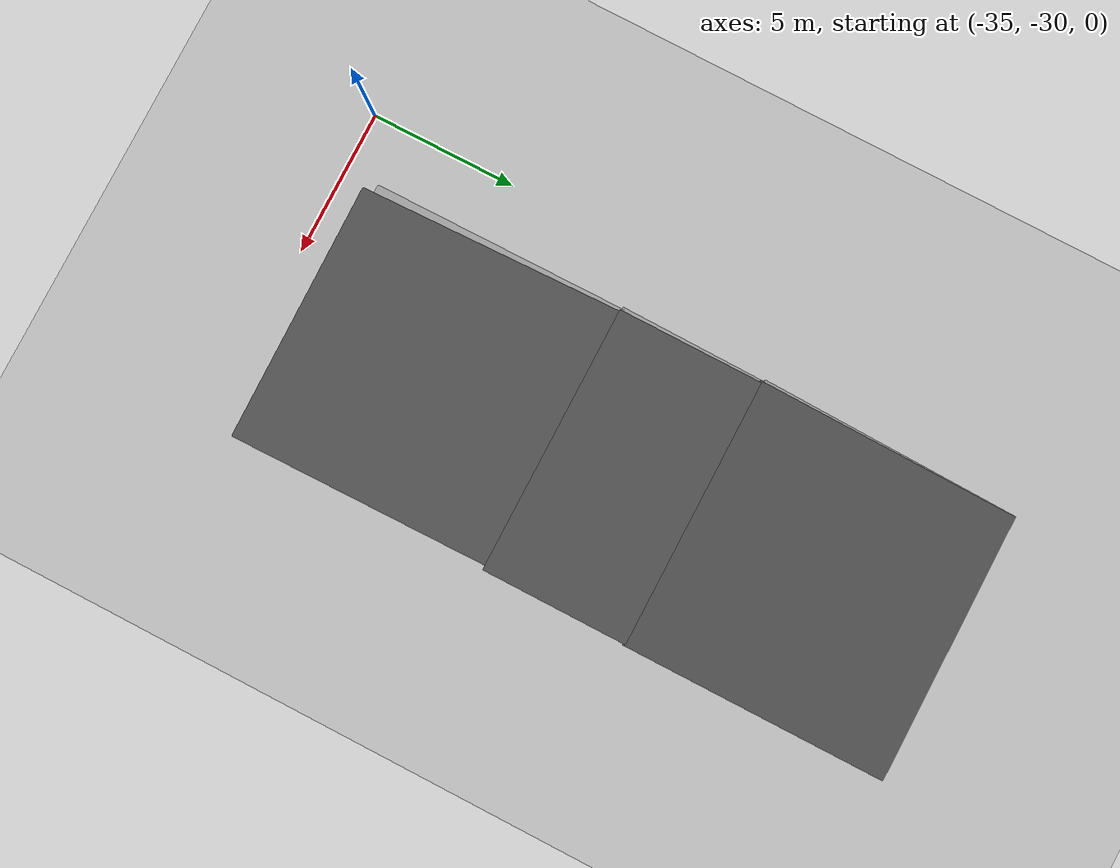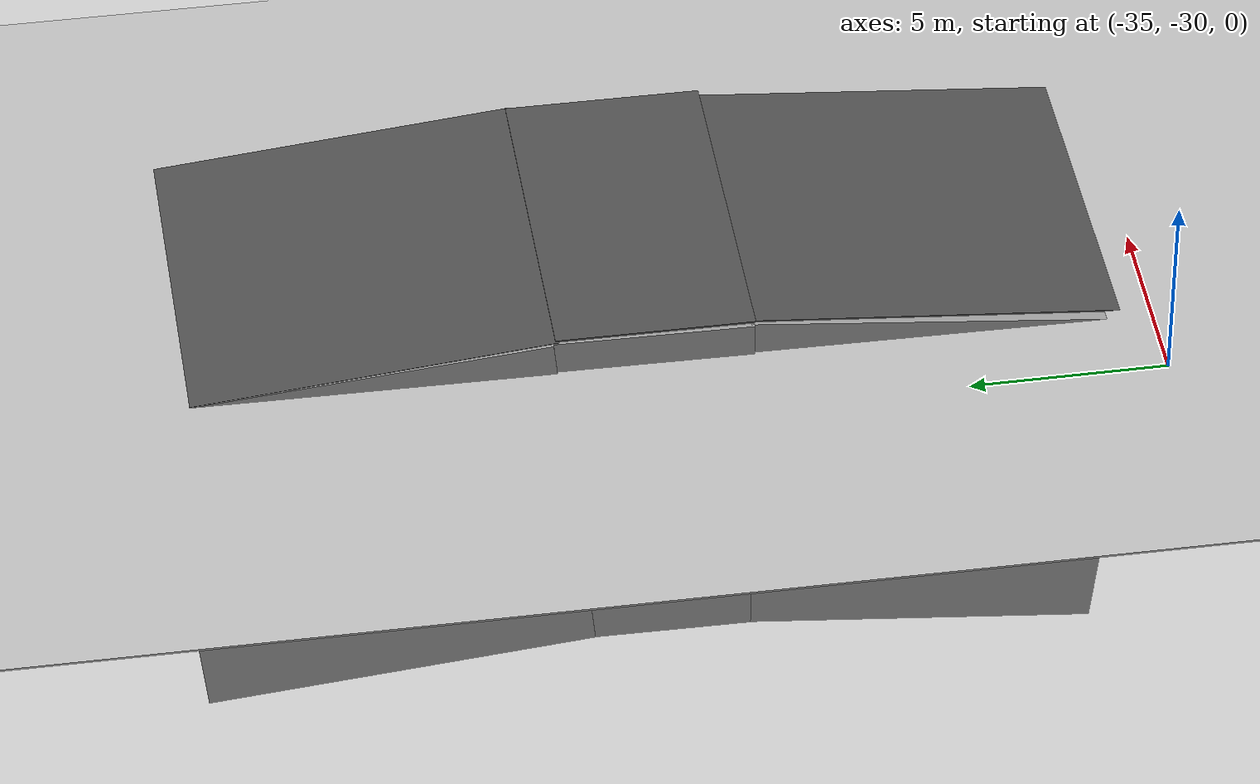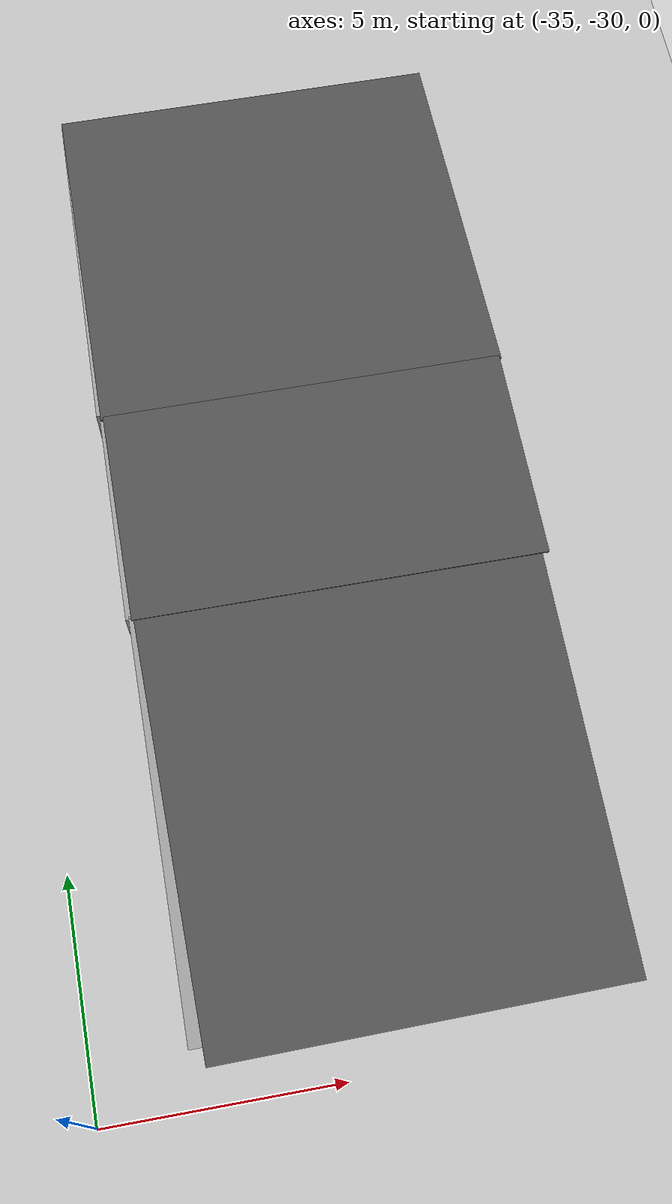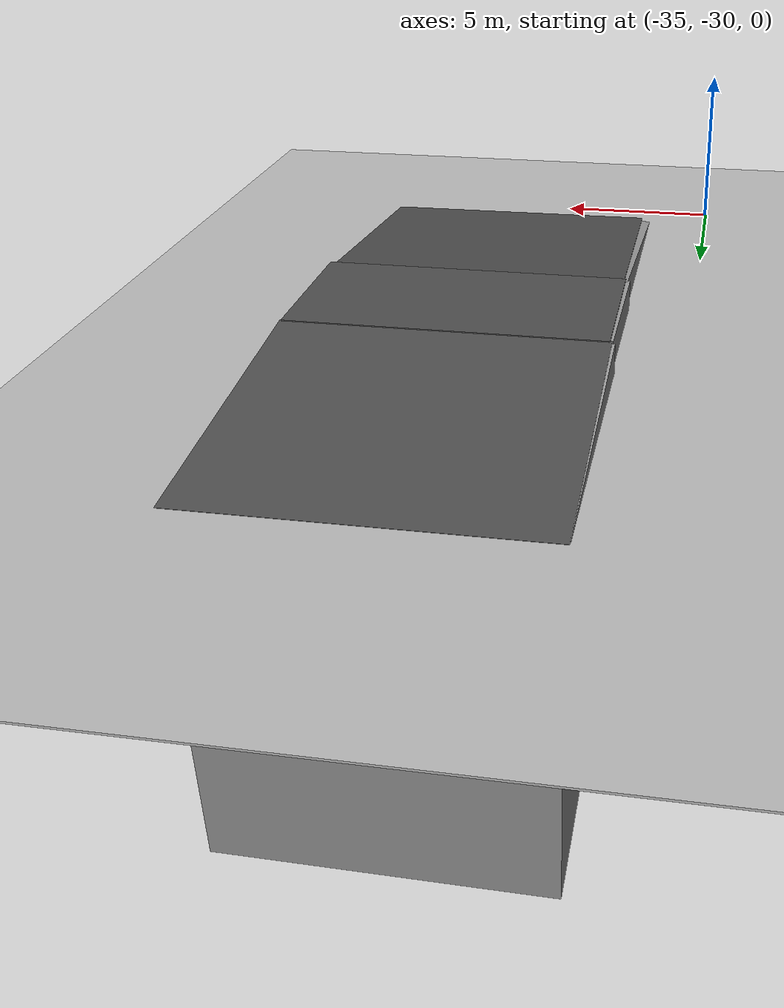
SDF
<sdf version="1.6">
 <world name="default">
  <model name="ground">
   <static>1</static>
   <link name="ground">
    <collision name="ground_coll"><geometry><box><size>83.6 150  0.05</size></box></geometry></collision>
    <visual name="ground_vis">
     <geometry><box><size>83.6 150  0.05</size></box></geometry>
     <material><script><uri>./course.material</uri><name>course</name></script></material>
    </visual>
   </link>
  </model>
  <model name="road">
   <pose>-28.3 -10.5 0.47 0.0 0.10 1.57</pose>
   <static>1</static>
   <link name="road">
    <collision name="road_coll"><geometry><box><size>9.2 9.3 0.05</size></box></geometry></collision>
    <visual name="road_vis">
     <geometry><box><size>9.2 9.3 0.05</size></box></geometry>
     <material><script><uri>./road.material</uri><name>road</name></script></material>
    </visual>
   </link>
  </model>
  <model name="road2">
   <pose>-28.3 -17.5 0.95 0.0 0.0 1.57</pose>
   <static>1</static>
   <link name="road2">
    <collision name="road2_coll"><geometry><box><size>5.0 9.2 0.05</size></box></geometry></collision>
    <visual name="road2_vis">
     <geometry><box><size>5.0 9.2 0.05</size></box></geometry>
     <material><script><uri>./road1.material</uri><name>road1</name></script></material>
    </visual>
   </link>
  </model>
  <model name="road3">
   <pose>-28.3 -24.5 0.47 0.0 -0.1 1.583</pose>
   <static>1</static>
   <link name="road3">
    <collision name="road3_coll"><geometry><box><size>9.5 9 0.05</size></box></geometry></collision>
    <visual name="road3_vis">
     <geometry><box><size>9.5 9 0.05</size></box></geometry>
     <material><script><uri>./road1.material</uri><name>road1</name></script></material>
    </visual>
   </link>
  </model>
  <include><uri>model://sun</uri></include>
  <model name="up_road">
   <pose>-28.5 -10.5 -4.55 0.0 -0.1 -1.58</pose>
   <static>1</static>
   <link name="link">
    <collision name="collision"><geometry><box><size>10 9 10</size></box></geometry></collision>
    <visual name="visual">
     <geometry><box><size>10 9 10</size></box></geometry>
     <material>
      <script><uri>file://media/materials/scripts/gazebo.material</uri><name>Gazebo/Grey</name></script>
     </material>
    </visual>
   </link>
  </model>
  <model name="flat_road">
   <pose>-28.5 -17.5 -4.08 0.0 0.0 1.56</pose>
   <static>1</static>
   <link name="link">
    <collision name="collision"><geometry><box><size>5 9 10</size></box></geometry></collision>
    <visual name="visual">
     <geometry><box><size>5 9 10</size></box></geometry>
     <material>
      <script><uri>file://media/materials/scripts/gazebo.material</uri><name>Gazebo/Grey</name></script>
     </material>
    </visual>
   </link>
  </model>
  <model name="down_road">
   <pose>-28.5 -24.4 -4.55 0 0.1 -1.58</pose>
   <static>1</static>
   <link name="link">
    <collision name="collision"><geometry><box><size>10 9 10</size></box></geometry></collision>
    <visual name="visual">
     <geometry><box><size>10 9 10</size></box></geometry>
     <material>
      <script><uri>file://media/materials/scripts/gazebo.material</uri><name>Gazebo/Grey</name></script>
     </material>
    </visual>
   </link>
  </model>
 </world>
</sdf>
